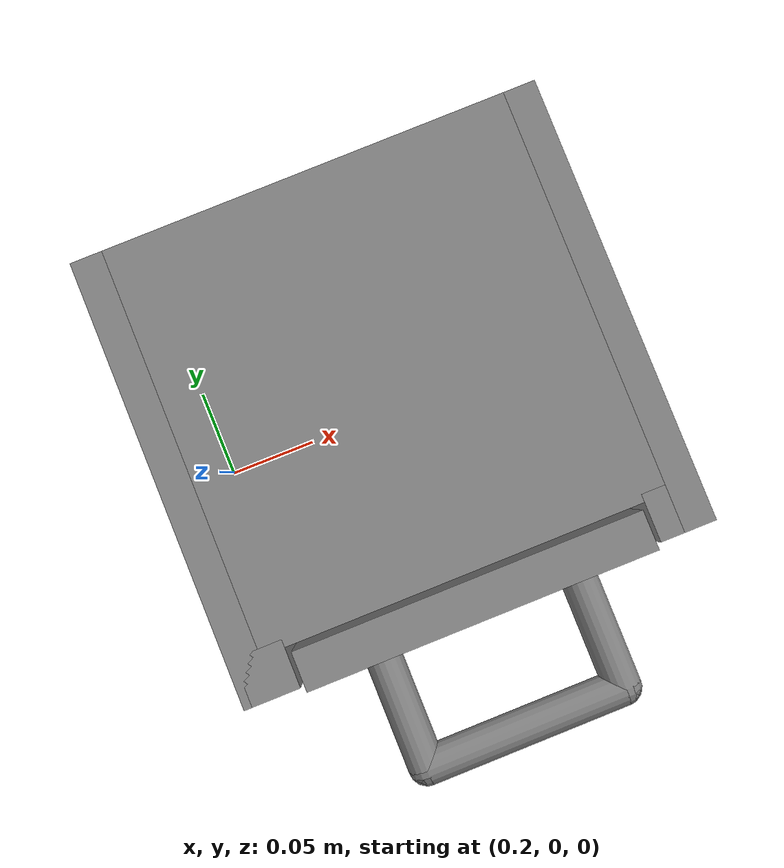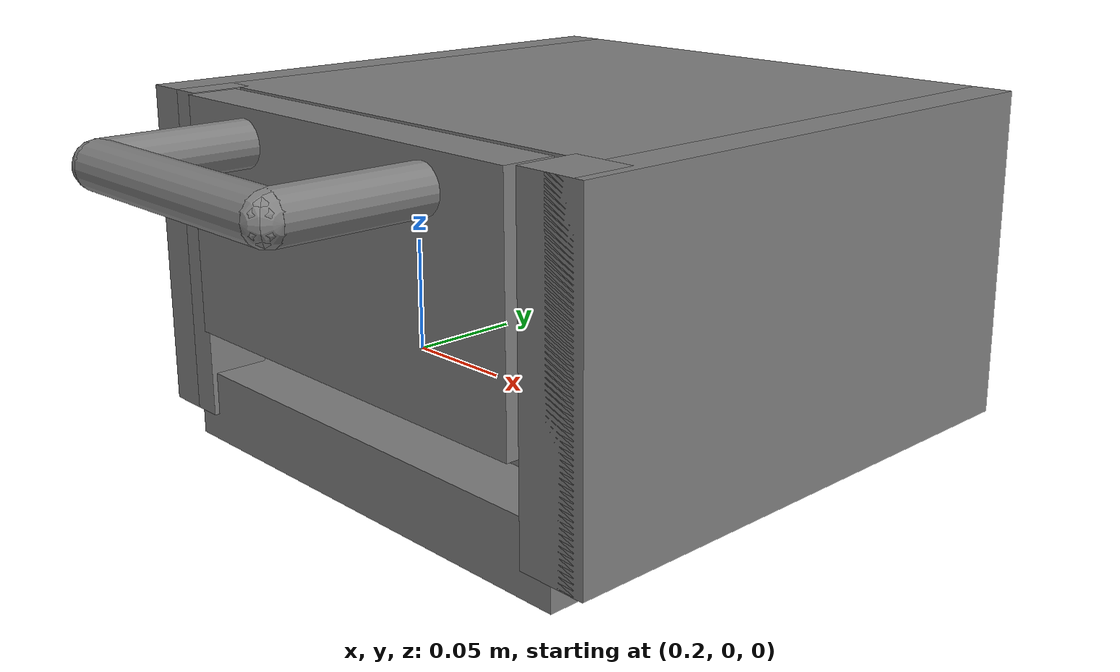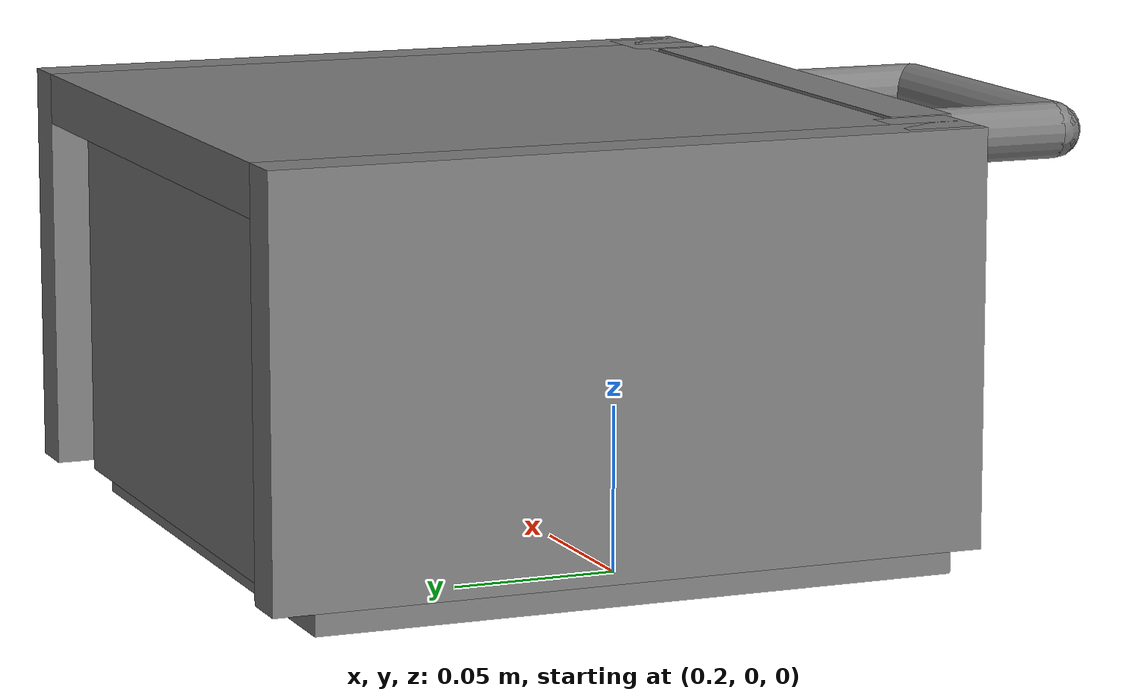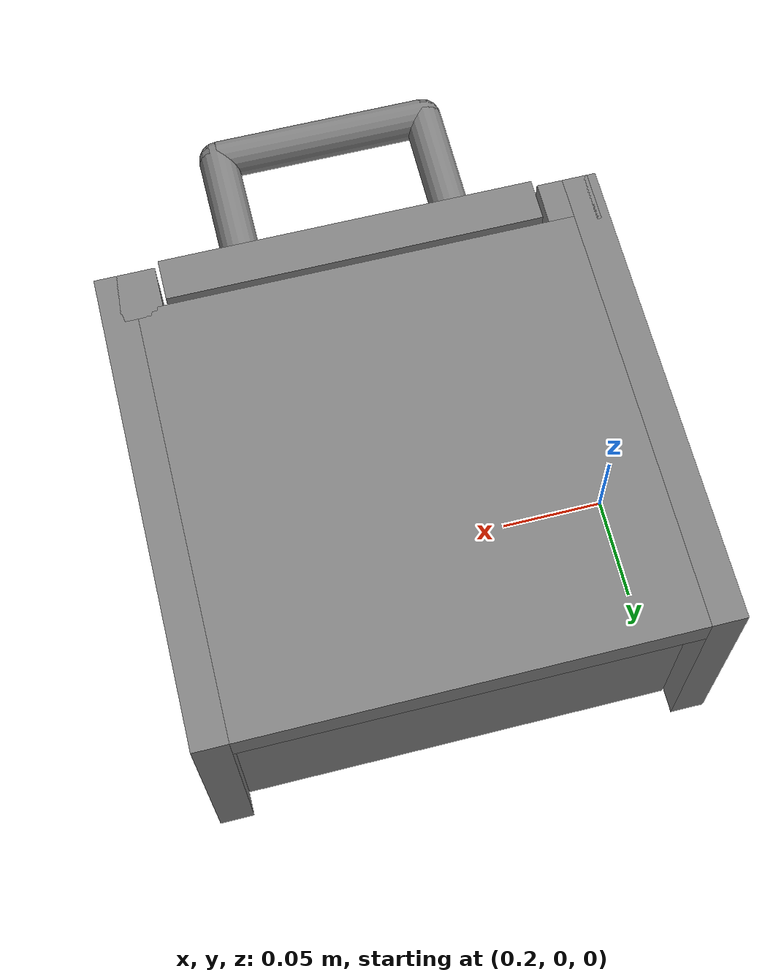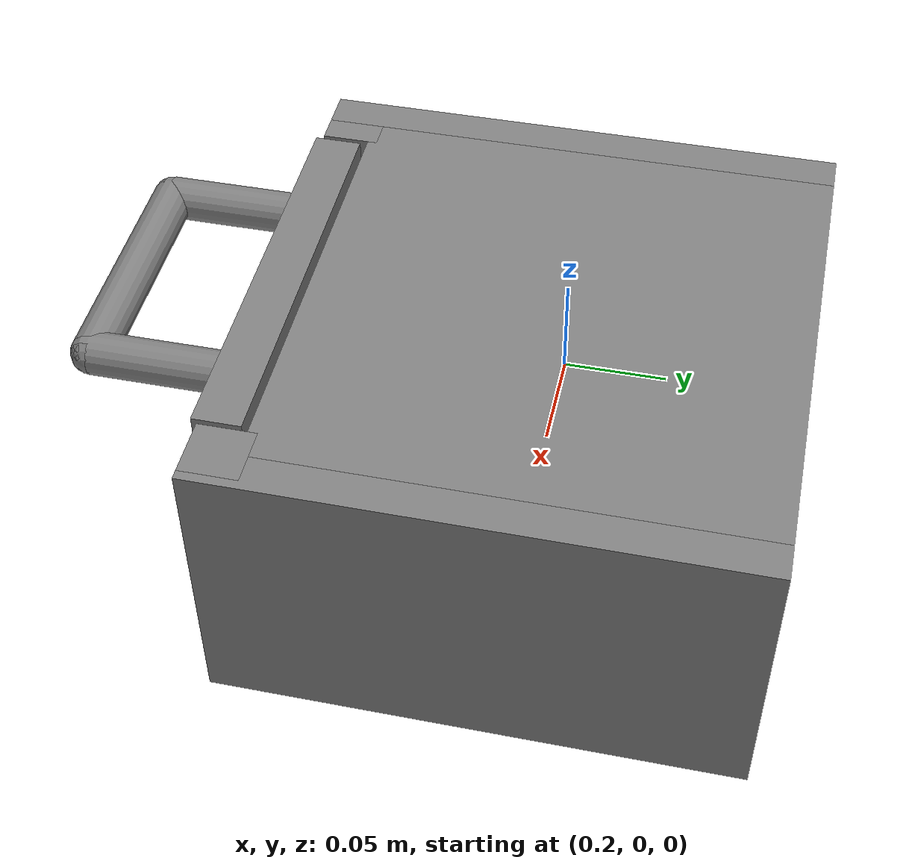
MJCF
<?xml version="1.0" encoding="utf-8"?>
<mujoco model="cabinet">
  <worldbody>
      <body>
        <body name="object" pos="0.3 0 0">
      <body name="base" pos="0 0 0" quat="1 0 0 0">

            <geom pos="-0.11 0 0.065" size="0.008 0.112 0.064" group="0" type="box" mass="0.05"/>
            <geom pos="0.11 0 0.065" size="0.008 0.112 0.064" group="0" type="box" mass="0.05"/>
            <geom pos="0 0.092 0.062" size="0.102 0.008 0.064" group="0" type="box" mass="0.05"/>
            <geom pos="0 -0.008 0.004" size="0.102 0.102 0.014" group="0" type="box" mass="0.05"/>
            <geom pos="0 0.01 0.121" size="0.102 0.102 0.008" group="0" type="box" mass="0.05"/>
            <geom pos="-0.102 -0.1 0.065" size="0.012 0.012 0.064" group="0" type="box" mass="0.05"/>
            <geom pos="0.102 -0.1 0.065" size="0.012 0.012 0.064" group="0" type="box" mass="0.05"/>

        <body name="drawer_link" pos="0 -0.01 0.076">
              <inertial pos="0 0 0.35" quat="0.5 0.5 0.5 0.5" mass="7.85398" diaginertia="0.923301 0.764585 0.168533" />

          <!-- NOTE: had to modify the joint range from BUDS since it was too small (older versions of mujoco did not enforce joint limit) -->
          <joint type="slide" range="-1.0 0" axis="0 1 0"
             name="goal_slidey" pos="0 0 0" damping="100.0"/>
                <geom pos="0 -0.095 0.007" size="0.088 0.010 0.046" group="0" type="box" mass="0.04"/>
                <geom pos="0 0.065 0.008" size="0.095 0.008 0.028" group="0" type="box" mass="0.04"/>
                <geom pos="-0.072 0 0.00" size="0.008 0.084 0.028" group="0" type="box" mass="0.04"/>
                <geom pos="0.072 0 0.00" size="0.008 0.084 0.028" group="0" type="box" mass="0.04"/>
                <geom name="drawer_bottom" pos="0 0 -0.04" size="0.08 0.09 0.008" group="0" type="box" mass="0.04"/>

                <!-- NOTE: changed material from ceramic to light wood here -->
                <geom name="drawer_handle_1" quat="0.7071055 0.7071081 0 0" pos="-0.05 -0.13 0.04" size="0.009 0.03" group="0" type="capsule" mass="0.06"/>
                <geom name="drawer_handle_2" quat="0.7071055 0 0.7071081 0" pos="0 -0.16 0.04" size="0.009 0.05" group="0" type="capsule" mass="0.06"/>
                <geom name="drawer_handle_3" quat="0.7071055 0.7071081 0 0" pos="0.05 -0.13 0.04" size="0.009 0.03" group="0" type="capsule" mass="0.06"/>

        </body>
          </body>
        </body>
        <site name="bottom_site" pos="0 0 -0.3" rgba="0 0 0 0" size="0.005"/>
        <site name="top_site" pos="0 0 0.3" rgba="0 0 0 0" size="0.005"/>
        <site name="horizontal_radius_site" pos="0.3 0 0" rgba="0 0 0 0" size="0.1"/>
      </body>
    </worldbody>
</mujoco>
